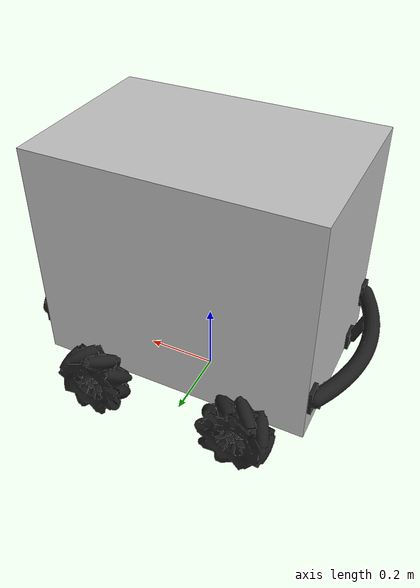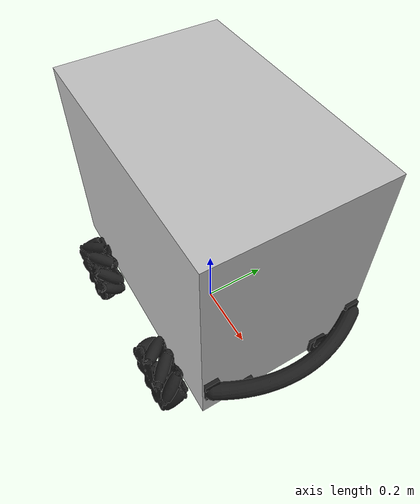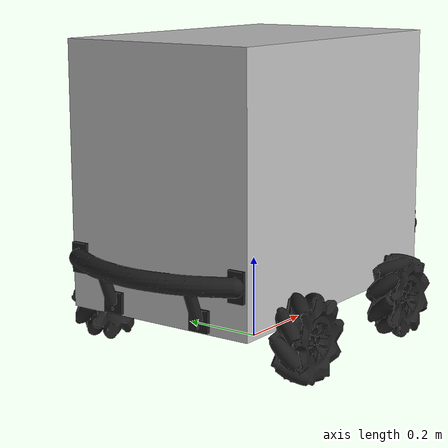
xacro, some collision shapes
<?xml version="1.0" encoding="utf-8"?>
<robot name="alpha" xmlns:xacro="http://ros.org/wiki/xacro" >
  <xacro:property name="M_PI"               value="3.1415926535897931"/>
  <xacro:property name="base_link_mass"     value="8.90"/>
  <xacro:property name="base_link_w"        value="0.750"/>  <!-- body length X -->
  <xacro:property name="base_link_h"        value="0.491"/>  <!-- body width  Y -->
  <xacro:property name="base_link_d"        value="0.620"/>  <!-- body height Z -->

  <xacro:property name="wheel_link_mass"    value="0.158" />
  <xacro:property name="wheel_link_radius"  value="0.1015"/> <!-- wheel radius 203mm dia / 2 -->
  <xacro:property name="wheel_link_length"  value="0.085"/>  <!-- wheel width -->

  <link name="base_footprint"/>

  <joint name="base_joint" type="fixed">
    <parent link="base_footprint"/>
    <child link="base_link"/>
    <origin xyz="0.0 0.0 0.1265" rpy="0 0 0"/>  <!-- ground clearance: wheel_r(0.1015) + axle_below(0.025) -->
  </joint>

  <link
    name="base_link">
    <xacro:box_inertial m="${base_link_mass}" w="${base_link_w}" h="${base_link_h}" d="${base_link_d}"/>
    <visual>
      <origin xyz="0 0 0" rpy="0 0 0" />
      <geometry>
        <mesh filename="package://alpha_description_new/meshes/base_link.stl" />
      </geometry>
      <material name="silver">
        <color rgba="0.75 0.75 0.75 1.0"/>
      </material>
    </visual>

   <collision>
  	<origin xyz="0 0 ${base_link_d/2}" rpy="0 0 0"/>
  	<geometry>
    	<box size="${base_link_w} ${base_link_h} ${base_link_d}" />
  	</geometry>
   </collision>

  </link>

  <link
    name="wheel_right_front_link">
    <xacro:cylinder_inertial m="${wheel_link_mass}" r="${wheel_link_radius}" h="${wheel_link_length}" />
    <visual>
      <origin
        xyz="0 0 0"
        rpy="0 0 0" />
      <geometry>
        <mesh
          filename="package://alpha_description_new/meshes/wheel_right_front_link.stl" />
      </geometry>
      <material name="black"/>
    </visual>
    <collision>
      <origin
        xyz="0 0 ${wheel_link_length/2.0}"
        rpy="0 0 0" />
      <geometry>
        <cylinder length="${wheel_link_length}" radius="${wheel_link_radius}"/>
      </geometry>
      <surface>
        <friction>
          <ode>
            <mu>1.0</mu>
            <mu2>0.0</mu2>
            <fdir1>1 0 0</fdir1>
          </ode>
        </friction>
      </surface>
    </collision>
  </link>
  <joint
    name="wheel_right_front_joint"
    type="continuous">
    <origin xyz="0.210 -0.2685 -0.025"
        rpy="1.5708 1.5708 0"/>
    <parent
      link="base_link" />
    <child
      link="wheel_right_front_link" />
    <axis xyz="0 0 -1" />
  </joint>
  <link
    name="wheel_left_front_link">
    <xacro:cylinder_inertial m="${wheel_link_mass}" r="${wheel_link_radius}" h="${wheel_link_length}" />
    <visual>
      <origin
        xyz="0 0 0"
        rpy="0 0 0" />
      <geometry>
        <mesh
          filename="package://alpha_description_new/meshes/wheel_left_front_link.stl" />
      </geometry>
      <material name="black"/>
    </visual>
    <collision>
      <origin
        xyz="0 0 -${wheel_link_length/2.0}"
        rpy="0 0 0" />
      <geometry>
        <cylinder length="${wheel_link_length}" radius="${wheel_link_radius}"/>
      </geometry>
      <surface>
        <friction>
          <ode>
            <mu>1.0</mu>
            <mu2>0.0</mu2>
            <fdir1>1 0 0</fdir1>
          </ode>
        </friction>
      </surface>
    </collision>
  </link>
  <joint
    name="wheel_left_front_joint"
    type="continuous">

    <origin xyz="0.210 0.2685 -0.025"
        rpy="1.5708 1.5708 0"/>
    <parent
      link="base_link" />
    <child
      link="wheel_left_front_link" />
    <axis xyz="0 0 -1" />
  </joint>
  <link
    name="wheel_right_back_link">
    <xacro:cylinder_inertial m="${wheel_link_mass}" r="${wheel_link_radius}" h="${wheel_link_length}" />
    <visual>
      <origin
        xyz="0 0 0"
        rpy="0 0 0" />
      <geometry>
        <mesh
          filename="package://alpha_description_new/meshes/wheel_right_back_link.stl" />
      </geometry>
      <material name="black"/>
    </visual>
    <collision>
      <origin
        xyz="0 0 ${wheel_link_length/2.0}"
        rpy="0 0 0" />
      <geometry>
        <cylinder length="${wheel_link_length}" radius="${wheel_link_radius}"/>
      </geometry>
      <surface>
        <friction>
          <ode>
            <mu>1.0</mu>
            <mu2>0.0</mu2>
            <fdir1>1 0 0</fdir1>
          </ode>
        </friction>
      </surface>
    </collision>
  </link>
  <joint
    name="wheel_right_back_joint"
    type="continuous">
    <origin xyz="-0.210 -0.2685 -0.025"
        rpy="1.5708 1.5708 0"/>
    <parent
      link="base_link" />
    <child
      link="wheel_right_back_link" />
    <axis xyz="0 0 -1" />
  </joint>
  <link
    name="wheel_left_back_link">
    <xacro:cylinder_inertial m="${wheel_link_mass}" r="${wheel_link_radius}" h="${wheel_link_length}" />
    <visual>
      <origin
        xyz="0 0 0"
        rpy="0 0 0" />
      <geometry>
        <mesh
          filename="package://alpha_description_new/meshes/wheel_left_back_link.stl" />
      </geometry>
      <material name="black"/>
    </visual>
    <collision>
      <origin
        xyz="0 0 -${wheel_link_length/2.0}"
        rpy="0 0 0" />
      <geometry>
        <cylinder length="${wheel_link_length}" radius="${wheel_link_radius}"/>
      </geometry>
      <surface>
        <friction>
          <ode>
            <mu>1.0</mu>
            <mu2>0.0</mu2>
            <fdir1>1 0 0</fdir1>
          </ode>
        </friction>
      </surface>
    </collision>
  </link>
  <joint
    name="wheel_left_back_joint"
    type="continuous">
    <origin xyz="-0.210 0.2685 -0.025"
        rpy="1.5708 1.5708 0"/>
    <parent
      link="base_link" />
    <child
      link="wheel_left_back_link" />
    <axis xyz="0 0 -1" />
  </joint>

  <!-- Bumpers -->
  <link name="front_bumper_link">
    <visual>
      <origin xyz="0 0 0" rpy="0 0 0" />
      <geometry>
        <mesh filename="package://alpha_description_new/meshes/front_bumper.stl" />
      </geometry>
      <material name="black"/>
    </visual>
  </link>

  <joint name="front_bumper_joint" type="fixed">
    <origin xyz="0.010 0 0" rpy="0 0 0" />
    <parent link="base_link" />
    <child link="front_bumper_link" />
  </joint>

  <link name="back_bumper_link">
    <visual>
      <origin xyz="0 0 0" rpy="0 0 0" />
      <geometry>
        <mesh filename="package://alpha_description_new/meshes/front_bumper.stl" />
      </geometry>
      <material name="black"/>
    </visual>
  </link>

  <joint name="back_bumper_joint" type="fixed">
    <origin xyz="-0.010 0 0" rpy="0 0 3.14159265" />
    <parent link="base_link" />
    <child link="back_bumper_link" />
  </joint>

  <gazebo reference="front_bumper_link">
    <material>
      <ambient>0.1 0.1 0.1 1.0</ambient>
      <diffuse>0.1 0.1 0.1 1.0</diffuse>
      <specular>0.05 0.05 0.05 1.0</specular>
    </material>
  </gazebo>

  <gazebo reference="back_bumper_link">
    <material>
      <ambient>0.1 0.1 0.1 1.0</ambient>
      <diffuse>0.1 0.1 0.1 1.0</diffuse>
      <specular>0.05 0.05 0.05 1.0</specular>
    </material>
  </gazebo>

  <!-- Transmission macro -->
  <xacro:macro name="SimpleTransmissionPosition" params="joint">
      <transmission name="tran_${joint}">
          <type>transmission_interface/SimpleTransmission</type>
          <joint name="${joint}">
              <hardwareInterface>hardware_interface/PositionJointInterface</hardwareInterface>
          </joint>
          <actuator name="${joint}_motor">
              <hardwareInterface>hardware_interface/PositionJointInterface</hardwareInterface>
              <mechanicalReduction>1</mechanicalReduction>
          </actuator>
      </transmission>
  </xacro:macro>
  <xacro:SimpleTransmissionPosition joint="joint1" />

  <gazebo>
    <plugin filename="gz-sim-mecanum-drive-system" name="gz::sim::systems::MecanumDrive">
      <front_left_joint>wheel_left_front_joint</front_left_joint>
      <back_left_joint>wheel_left_back_joint</back_left_joint>
      <front_right_joint>wheel_right_front_joint</front_right_joint>
      <back_right_joint>wheel_right_back_joint</back_right_joint>
      <wheel_separation>0.537</wheel_separation>
      <wheelbase>0.420</wheelbase>
      <wheel_radius>0.1015</wheel_radius>
      <odom_publish_frequency>50</odom_publish_frequency>
      <topic>/cmd_vel</topic>
      <odom_topic>/odom</odom_topic>
      <tf_topic>/tf</tf_topic>
      <frame_id>odom</frame_id>
    </plugin>
  </gazebo>

  <gazebo>
    <plugin
      filename="gz-sim-odometry-publisher-system"
      name="gz::sim::systems::OdometryPublisher">
      <odom_frame>odom</odom_frame>
      <robot_base_frame>base_footprint</robot_base_frame>
      <odom_publish_frequency>50</odom_publish_frequency>
      <odom_topic>/odom</odom_topic>
      <tf_topic>/tf</tf_topic>
    </plugin>
  </gazebo>

  <gazebo reference="base_link">
    <material>
      <ambient>0.75 0.75 0.75 1.0</ambient>
      <diffuse>0.75 0.75 0.75 1.0</diffuse>
      <specular>0.5 0.5 0.5 1.0</specular>
    </material>
  </gazebo>
</robot>
